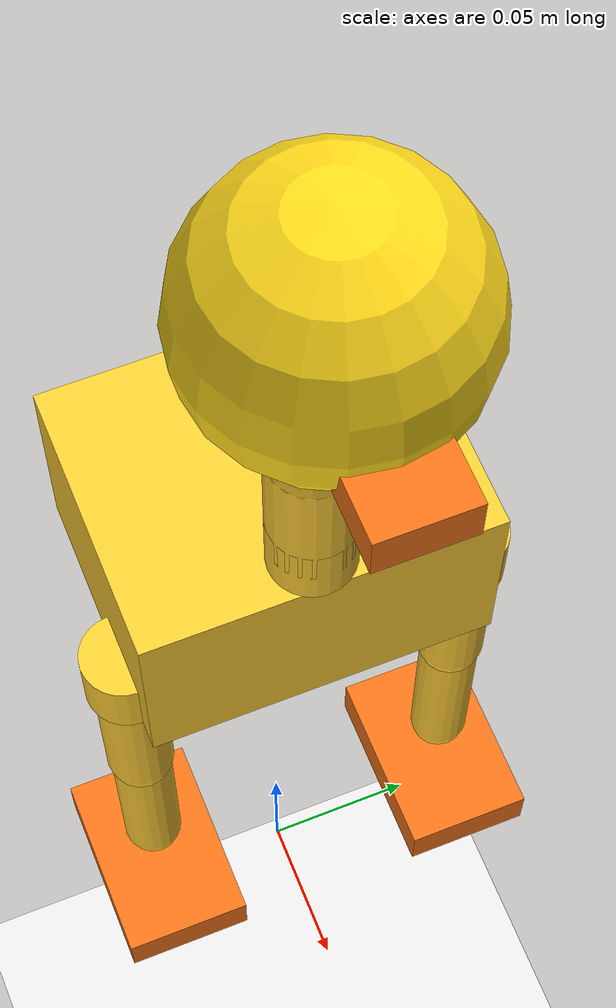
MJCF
<mujoco model="microduck">
  <compiler angle="radian"/>

  <default>
    <!-- Default physics for all joints and motors -->
    <joint damping="0.1" armature="0.01"/>
    <!-- The hardware clamp: max motor velocity/torque limits -->
    <motor ctrlrange="-1.0 1.0" ctrllimited="true"/>
    <geom rgba="1.0 0.8 0.2 1" density="1000"/>
  </default>

  <worldbody>
    <!-- The Floor -->
    <geom type="plane" size="2 2 0.1" pos="0 0 -0.25" rgba="0.9 0.9 0.9 1"/>

    <!-- The Microduck Pelvis (Root Body) floating 25cm high -->
    <body name="pelvis" pos="0 0 0.25">
      <joint type="free" name="root"/>
      <geom type="box" size="0.04 0.05 0.03" rgba="1 0.8 0.2 1" mass="0.3"/>

      <!-- Left Leg (5 DOFs) -->
      <body name="l_hip_yaw_link" pos="0.02 0.03 -0.02">
        <joint name="l_hip_yaw" type="hinge" axis="0 0 1"/>
        <geom type="cylinder" size="0.012 0.01" mass="0.03"/>
        <body name="l_hip_roll_link" pos="0 0.02 0">
          <joint name="l_hip_roll" type="hinge" axis="1 0 0"/>
          <geom type="cylinder" size="0.012 0.01" mass="0.03"/>
          <body name="l_hip_pitch_link" pos="0 0 -0.03">
            <joint name="l_hip_pitch" type="hinge" axis="0 1 0"/>
            <geom type="capsule" size="0.01 0.03" mass="0.04"/>
            <body name="l_knee_link" pos="0 0 -0.06">
              <joint name="l_knee_pitch" type="hinge" axis="0 1 0"/>
              <geom type="capsule" size="0.009 0.03" mass="0.03"/>
              <body name="l_foot_link" pos="0 0 -0.06">
                <joint name="l_ankle_pitch" type="hinge" axis="0 1 0"/>
                <geom type="box" size="0.03 0.02 0.008" rgba="0.95 0.45 0.1 1" mass="0.04"/>
              </body>
            </body>
          </body>
        </body>
      </body>

      <!-- Right Leg (5 DOFs) -->
      <body name="r_hip_yaw_link" pos="0.02 -0.03 -0.02">
        <joint name="r_hip_yaw" type="hinge" axis="0 0 1"/>
        <geom type="cylinder" size="0.012 0.01" mass="0.03"/>
        <body name="r_hip_roll_link" pos="0 -0.02 0">
          <joint name="r_hip_roll" type="hinge" axis="1 0 0"/>
          <geom type="cylinder" size="0.012 0.01" mass="0.03"/>
          <body name="r_hip_pitch_link" pos="0 0 -0.03">
            <joint name="r_hip_pitch" type="hinge" axis="0 1 0"/>
            <geom type="capsule" size="0.01 0.03" mass="0.04"/>
            <body name="r_knee_link" pos="0 0 -0.06">
              <joint name="r_knee_pitch" type="hinge" axis="0 1 0"/>
              <geom type="capsule" size="0.009 0.03" mass="0.03"/>
              <body name="r_foot_link" pos="0 0 -0.06">
                <joint name="r_ankle_pitch" type="hinge" axis="0 1 0"/>
                <geom type="box" size="0.03 0.02 0.008" rgba="0.95 0.45 0.1 1" mass="0.04"/>
              </body>
            </body>
          </body>
        </body>
      </body>

      <!-- Neck & Head (5 DOFs) -->
      <body name="neck_base" pos="0.03 0 0.04">
        <joint name="neck_yaw" type="hinge" axis="0 0 1"/>
        <geom type="cylinder" size="0.012 0.01" mass="0.02"/>
        <body name="neck_mid" pos="0 0 0.02">
          <joint name="neck_pitch" type="hinge" axis="0 1 0"/>
          <geom type="capsule" size="0.012 0.02" mass="0.03"/>
          <body name="neck_top" pos="0 0 0.04">
            <joint name="neck_roll" type="hinge" axis="1 0 0"/>
            <geom type="cylinder" size="0.01 0.01" mass="0.02"/>
            <body name="head_yaw_link" pos="0 0 0.02">
              <joint name="head_yaw" type="hinge" axis="0 0 1"/>
              <geom type="cylinder" size="0.01 0.01" mass="0.02"/>
              <body name="head_main" pos="0.01 0 0.03">
                <joint name="head_pitch" type="hinge" axis="0 1 0"/>
                <geom type="sphere" size="0.035" rgba="1 0.85 0.1 1" mass="0.15"/>
                <geom type="box" size="0.018 0.012 0.006" pos="0.03 0 -0.01" rgba="0.95 0.45 0.1 1" mass="0.02"/>
              </body>
            </body>
          </body>
        </body>
      </body>
    </body>
  </worldbody>

  <actuator>
    <!-- Left Leg (5 Motors) -->
    <motor joint="l_hip_yaw" name="motor_l0"/>
    <motor joint="l_hip_roll" name="motor_l1"/>
    <motor joint="l_hip_pitch" name="motor_l2"/>
    <motor joint="l_knee_pitch" name="motor_l3"/>
    <motor joint="l_ankle_pitch" name="motor_l4"/>
    <!-- Right Leg (5 Motors) -->
    <motor joint="r_hip_yaw" name="motor_r5"/>
    <motor joint="r_hip_roll" name="motor_r6"/>
    <motor joint="r_hip_pitch" name="motor_r7"/>
    <motor joint="r_knee_pitch" name="motor_r8"/>
    <motor joint="r_ankle_pitch" name="motor_r9"/>
    <!-- Neck & Head (5 Motors) -->
    <motor joint="neck_yaw" name="motor_n10"/>
    <motor joint="neck_pitch" name="motor_n11"/>
    <motor joint="neck_roll" name="motor_n12"/>
    <motor joint="head_yaw" name="motor_n13"/>
    <motor joint="head_pitch" name="motor_n14"/>
  </actuator>
</mujoco>
